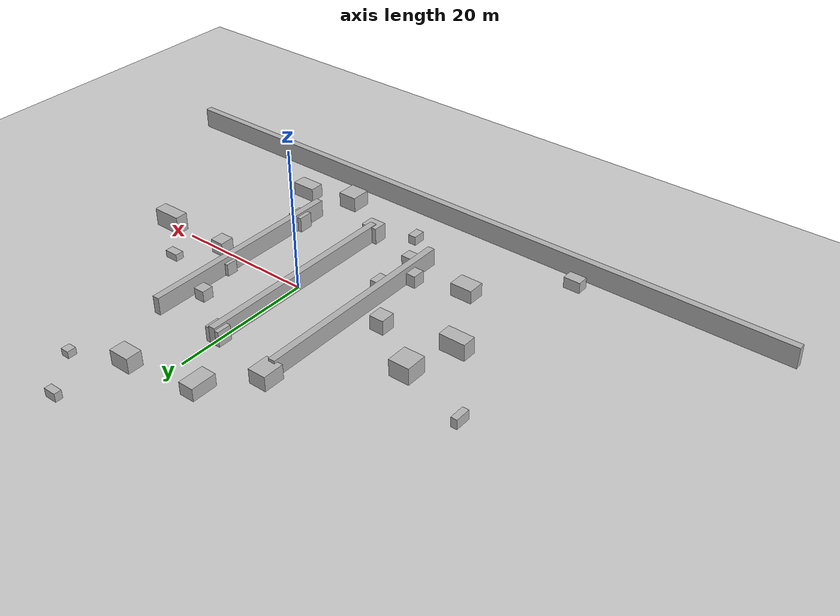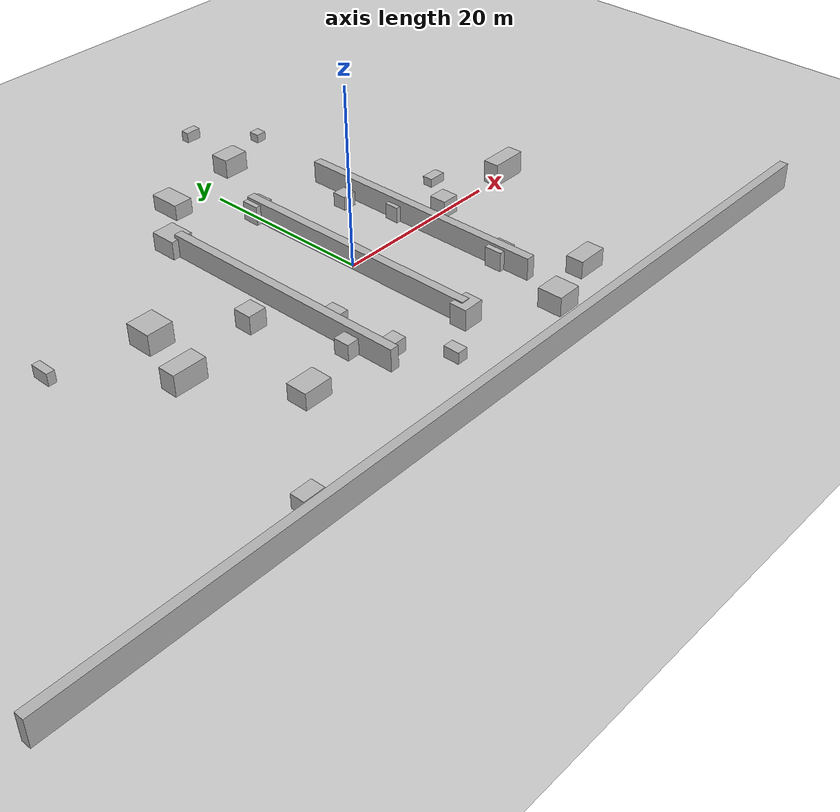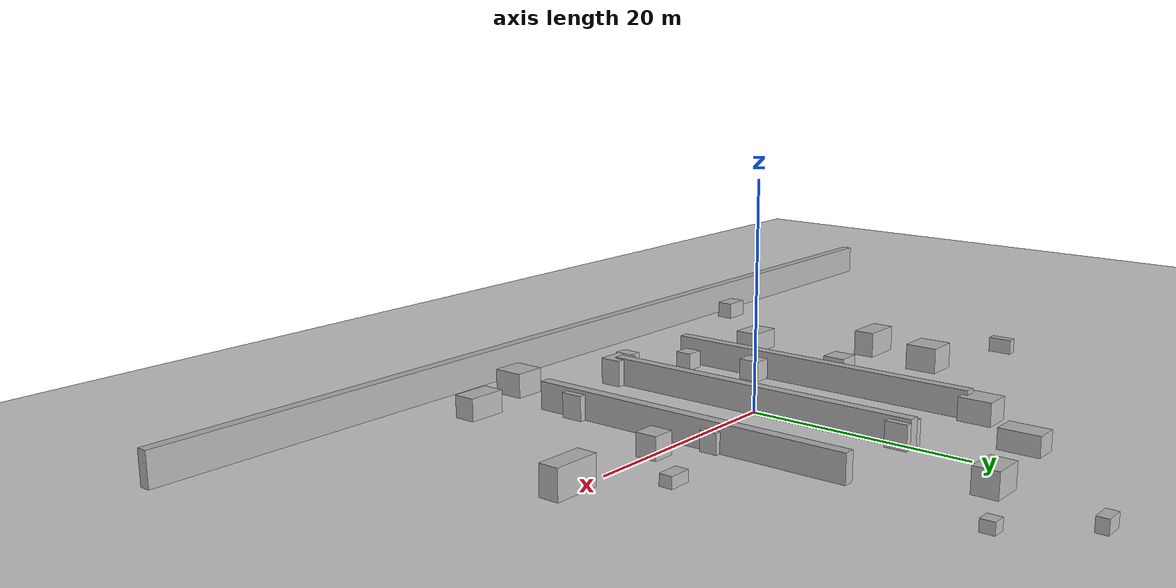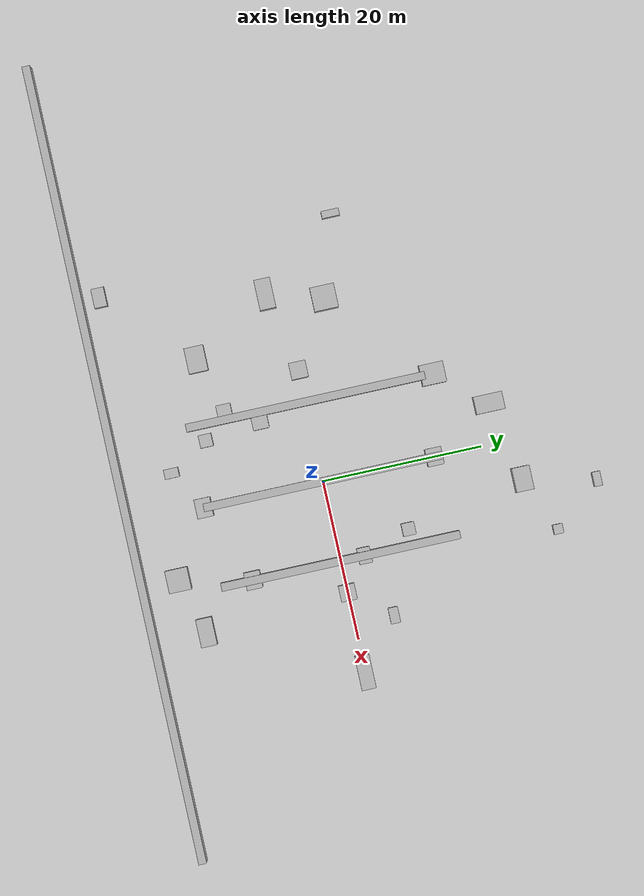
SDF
<sdf version="1.7">
 <world name="warehouse_world">
  <physics name="10ms" type="ignored">
   <max_step_size>0.01</max_step_size>
   <real_time_factor>1.0</real_time_factor>
   <real_time_update_rate>100</real_time_update_rate>
  </physics>
  <plugin filename="gz-sim-physics-system" name="gz::sim::systems::Physics"/>
  <plugin filename="gz-sim-user-commands-system" name="gz::sim::systems::UserCommands"/>
  <plugin filename="gz-sim-scene-broadcaster-system" name="gz::sim::systems::SceneBroadcaster"/>
  <plugin filename="gz-sim-imu-system" name="gz::sim::systems::Imu"/>
  <plugin filename="gz-sim-sensors-system" name="gz::sim::systems::Sensors">
   <render_engine>ogre2</render_engine>
  </plugin>
  <light type="directional" name="sun">
   <pose>0 0 10 0 0 0</pose>
   <diffuse>0.8 0.8 0.8 1</diffuse>
   <specular>0.2 0.2 0.2 1</specular>
   <attenuation>
    <range>1000</range>
    <constant>0.9</constant>
    <linear>0.01</linear>
    <quadratic>0.001</quadratic>
   </attenuation>
   <direction>-0.5 0.1 -0.9</direction>
  </light>
  <model name="ground_plane">
   <static>true</static>
   <pose>0 0 0.1 0 0 0</pose>
   <link name="link">
    <collision name="collision">
     <geometry><plane><normal>0 0 1</normal><size>100 100</size></plane></geometry>
    </collision>
    <visual name="visual">
     <geometry><plane><normal>0 0 1</normal><size>100 100</size></plane></geometry>
     <material>
      <ambient>0.8 0.8 0.8 1</ambient>
      <diffuse>0.8 0.8 0.8 1</diffuse>
      <specular>0.8 0.8 0.8 1</specular>
     </material>
    </visual>
   </link>
  </model>
  <model name="box_1_xp20">
   <pose>10 0 0.0 -2.4e-05 -4e-06 5e-06</pose>
   <link name="box_link">
    <inertial>
     <inertia><ixx>0.16666</ixx><ixy>0</ixy><ixz>0</ixz><iyy>0.16666</iyy><iyz>0</iyz><izz>0.16666</izz></inertia>
     <mass>1</mass>
    </inertial>
    <collision name="box_collision"><geometry><box><size>1 30 5</size></box></geometry></collision>
    <visual name="box_visual">
     <geometry><box><size>1 30 5</size></box></geometry>
     <material>
      <ambient>0.3 0.3 0.3 1</ambient>
      <diffuse>0.7 0.7 0.7 1</diffuse>
      <specular>1 1 1 1</specular>
     </material>
    </visual>
   </link>
   <static>true</static>
  </model>
  <model name="box_1_xm20">
   <pose>-10 0 0.0 -2.4e-05 -4e-06 5e-06</pose>
   <link name="box_link">
    <inertial>
     <inertia><ixx>0.16666</ixx><ixy>0</ixy><ixz>0</ixz><iyy>0.16666</iyy><iyz>0</iyz><izz>0.16666</izz></inertia>
     <mass>1</mass>
    </inertial>
    <collision name="box_collision"><geometry><box><size>1 30 5</size></box></geometry></collision>
    <visual name="box_visual">
     <geometry><box><size>1 30 5</size></box></geometry>
     <material>
      <ambient>0.3 0.3 0.3 1</ambient>
      <diffuse>0.7 0.7 0.7 1</diffuse>
      <specular>1 1 1 1</specular>
     </material>
    </visual>
   </link>
   <static>true</static>
  </model>
  <model name="box_13">
   <pose>-7.46742 -24.5276 0.507946 -2.4e-05 -4e-06 5e-06</pose>
   <link name="box_link">
    <inertial>
     <inertia><ixx>0.16666</ixx><ixy>0</ixy><ixz>0</ixz><iyy>0.16666</iyy><iyz>0</iyz><izz>0.16666</izz></inertia>
     <mass>1</mass>
    </inertial>
    <collision name="box_collision"><geometry><box><size>100 1 5</size></box></geometry></collision>
    <visual name="box_visual">
     <geometry><box><size>100 1 5</size></box></geometry>
     <material>
      <ambient>0.3 0.3 0.3 1</ambient>
      <diffuse>0.7 0.7 0.7 1</diffuse>
      <specular>1 1 1 1</specular>
     </material>
    </visual>
   </link>
   <static>true</static>
  </model>
  <model name="box_1">
   <pose>0 0 0.0 -2.4e-05 -4e-06 5e-06</pose>
   <link name="box_link">
    <inertial>
     <inertia><ixx>0.16666</ixx><ixy>0</ixy><ixz>0</ixz><iyy>0.16666</iyy><iyz>0</iyz><izz>0.16666</izz></inertia>
     <mass>1</mass>
    </inertial>
    <collision name="box_collision"><geometry><box><size>1 30 5</size></box></geometry></collision>
    <visual name="box_visual">
     <geometry><box><size>1 30 5</size></box></geometry>
     <material>
      <ambient>0.3 0.3 0.3 1</ambient>
      <diffuse>0.7 0.7 0.7 1</diffuse>
      <specular>1 1 1 1</specular>
     </material>
    </visual>
   </link>
   <static>true</static>
  </model>
  <model name="obs_1">
   <pose>18 5 0.5 0 0 0</pose>
   <link name="box_link">
    <collision name="box_collision"><geometry><box><size>2.0 1.2 1.0</size></box></geometry></collision>
    <visual name="box_visual"><geometry><box><size>2.0 1.2 1.0</size></box></geometry></visual>
   </link>
   <static>true</static>
  </model>
  <model name="obs_7">
   <pose>-5 -18 0.65 0 0 0</pose>
   <link name="box_link">
    <collision name="box_collision"><geometry><box><size>1.2 1.8 1.3</size></box></geometry></collision>
    <visual name="box_visual"><geometry><box><size>1.2 1.8 1.3</size></box></geometry></visual>
   </link>
   <static>true</static>
  </model>
  <model name="obs_11">
   <pose>-32 8 0.7 0 0 0</pose>
   <link name="box_link">
    <collision name="box_collision"><geometry><box><size>0.9 2.2 1.4</size></box></geometry></collision>
    <visual name="box_visual"><geometry><box><size>0.9 2.2 1.4</size></box></geometry></visual>
   </link>
   <static>true</static>
  </model>
  <model name="obs_12">
   <pose>7 33 0.6 0 0 0</pose>
   <link name="box_link">
    <collision name="box_collision"><geometry><box><size>1.8 1.0 1.2</size></box></geometry></collision>
    <visual name="box_visual"><geometry><box><size>1.8 1.0 1.2</size></box></geometry></visual>
   </link>
   <static>true</static>
  </model>
  <model name="obs_13">
   <pose>-28 -22 0.8 0 0 0</pose>
   <link name="box_link">
    <collision name="box_collision"><geometry><box><size>2.4 1.6 1.6</size></box></geometry></collision>
    <visual name="box_visual"><geometry><box><size>2.4 1.6 1.6</size></box></geometry></visual>
   </link>
   <static>true</static>
  </model>
  <model name="obs_14">
   <pose>12 27 0.5 0 0 0</pose>
   <link name="box_link">
    <collision name="box_collision"><geometry><box><size>1.2 1.2 1.0</size></box></geometry></collision>
    <visual name="box_visual"><geometry><box><size>1.2 1.2 1.0</size></box></geometry></visual>
   </link>
   <static>true</static>
  </model>
  <model name="obs_17">
   <pose>-22 5 1.2 0 0 0</pose>
   <link name="box_link">
    <collision name="box_collision"><geometry><box><size>3.0 3.0 2.4</size></box></geometry></collision>
    <visual name="box_visual"><geometry><box><size>3.0 3.0 2.4</size></box></geometry></visual>
   </link>
   <static>true</static>
  </model>
  <model name="obs_18">
   <pose>15 -18 1.0 0 0 0</pose>
   <link name="box_link">
    <collision name="box_collision"><geometry><box><size>3.5 2.0 2.0</size></box></geometry></collision>
    <visual name="box_visual"><geometry><box><size>3.5 2.0 2.0</size></box></geometry></visual>
   </link>
   <static>true</static>
  </model>
  <model name="obs_19">
   <pose>-5 22 0.9 0 0 0</pose>
   <link name="box_link">
    <collision name="box_collision"><geometry><box><size>2.2 3.6 1.8</size></box></geometry></collision>
    <visual name="box_visual"><geometry><box><size>2.2 3.6 1.8</size></box></geometry></visual>
   </link>
   <static>true</static>
  </model>
  <model name="obs_20">
   <pose>8 -20 1.1 0 0 0</pose>
   <link name="box_link">
    <collision name="box_collision"><geometry><box><size>2.8 2.8 2.2</size></box></geometry></collision>
    <visual name="box_visual"><geometry><box><size>2.8 2.8 2.2</size></box></geometry></visual>
   </link>
   <static>true</static>
  </model>
  <model name="obs_21">
   <pose>-18 -12 0.95 0 0 0</pose>
   <link name="box_link">
    <collision name="box_collision"><geometry><box><size>3.2 2.4 1.9</size></box></geometry></collision>
    <visual name="box_visual"><geometry><box><size>3.2 2.4 1.9</size></box></geometry></visual>
   </link>
   <static>true</static>
  </model>
  <model name="obs_22">
   <pose>24 0 1.3 0 0 0</pose>
   <link name="box_link">
    <collision name="box_collision"><geometry><box><size>4.2 1.8 2.6</size></box></geometry></collision>
    <visual name="box_visual"><geometry><box><size>4.2 1.8 2.6</size></box></geometry></visual>
   </link>
   <static>true</static>
  </model>
  <model name="obs_23">
   <pose>-10 16 1.05 0 0 0</pose>
   <link name="box_link">
    <collision name="box_collision"><geometry><box><size>2.6 3.0 2.1</size></box></geometry></collision>
    <visual name="box_visual"><geometry><box><size>2.6 3.0 2.1</size></box></geometry></visual>
   </link>
   <static>true</static>
  </model>
  <model name="obs_24">
   <pose>5 24 1.1 0 0 0</pose>
   <link name="box_link">
    <collision name="box_collision"><geometry><box><size>3.0 2.2 2.2</size></box></geometry></collision>
    <visual name="box_visual"><geometry><box><size>3.0 2.2 2.2</size></box></geometry></visual>
   </link>
   <static>true</static>
  </model>
  <model name="obs_25">
   <pose>-24 -2 1.2 0 0 0</pose>
   <link name="box_link">
    <collision name="box_collision"><geometry><box><size>3.8 2.0 2.4</size></box></geometry></collision>
    <visual name="box_visual"><geometry><box><size>3.8 2.0 2.4</size></box></geometry></visual>
   </link>
   <static>true</static>
  </model>
  <model name="obs_26">
   <pose>10 3 0.9 0 0 0</pose>
   <link name="box_link">
    <collision name="box_collision"><geometry><box><size>2.0 1.6 1.8</size></box></geometry></collision>
    <visual name="box_visual"><geometry><box><size>2.0 1.6 1.8</size></box></geometry></visual>
   </link>
   <static>true</static>
  </model>
  <model name="obs_30">
   <pose>-9 -6 0.95 0 0 0</pose>
   <link name="box_link">
    <collision name="box_collision"><geometry><box><size>2.2 2.0 1.9</size></box></geometry></collision>
    <visual name="box_visual"><geometry><box><size>2.2 2.0 1.9</size></box></geometry></visual>
   </link>
   <static>true</static>
  </model>
  <model name="obs_31">
   <pose>14 0 1.0 0 0 0</pose>
   <link name="box_link">
    <collision name="box_collision"><geometry><box><size>2.0 2.0 2.0</size></box></geometry></collision>
    <visual name="box_visual"><geometry><box><size>2.0 2.0 2.0</size></box></geometry></visual>
   </link>
   <static>true</static>
  </model>
  <model name="obs_33">
   <pose>10 -11 1.1 0 0 0</pose>
   <link name="box_link">
    <collision name="box_collision"><geometry><box><size>2.2 2.0 2.2</size></box></geometry></collision>
    <visual name="box_visual"><geometry><box><size>2.2 2.0 2.2</size></box></geometry></visual>
   </link>
   <static>true</static>
  </model>
  <model name="obs_34">
   <pose>-8 -13 0.8 0 0 0</pose>
   <link name="box_link">
    <collision name="box_collision"><geometry><box><size>1.6 1.6 1.6</size></box></geometry></collision>
    <visual name="box_visual"><geometry><box><size>1.6 1.6 1.6</size></box></geometry></visual>
   </link>
   <static>true</static>
  </model>
  <model name="obs_38">
   <pose>0 -15 1.2 0 0 0</pose>
   <link name="box_link">
    <collision name="box_collision"><geometry><box><size>2.4 2.0 2.4</size></box></geometry></collision>
    <visual name="box_visual"><geometry><box><size>2.4 2.0 2.4</size></box></geometry></visual>
   </link>
   <static>true</static>
  </model>
  <model name="obs_40">
   <pose>-14 0 1.05 0 0 0</pose>
   <link name="box_link">
    <collision name="box_collision"><geometry><box><size>2.1 2.1 2.1</size></box></geometry></collision>
    <visual name="box_visual"><geometry><box><size>2.1 2.1 2.1</size></box></geometry></visual>
   </link>
   <static>true</static>
  </model>
  <model name="obs_41">
   <pose>8 9 0.8 0 0 0</pose>
   <link name="box_link">
    <collision name="box_collision"><geometry><box><size>1.6 1.6 1.6</size></box></geometry></collision>
    <visual name="box_visual"><geometry><box><size>1.6 1.6 1.6</size></box></geometry></visual>
   </link>
   <static>true</static>
  </model>
  <model name="obs_44">
   <pose>-11 -10 0.9 0 0 0</pose>
   <link name="box_link">
    <collision name="box_collision"><geometry><box><size>1.8 1.8 1.8</size></box></geometry></collision>
    <visual name="box_visual"><geometry><box><size>1.8 1.8 1.8</size></box></geometry></visual>
   </link>
   <static>true</static>
  </model>
  <model name="obs_45">
   <pose>0 14 1.1 0 0 0</pose>
   <link name="box_link">
    <collision name="box_collision"><geometry><box><size>2.2 2.0 2.2</size></box></geometry></collision>
    <visual name="box_visual"><geometry><box><size>2.2 2.0 2.2</size></box></geometry></visual>
   </link>
   <static>true</static>
  </model>
 </world>
</sdf>
